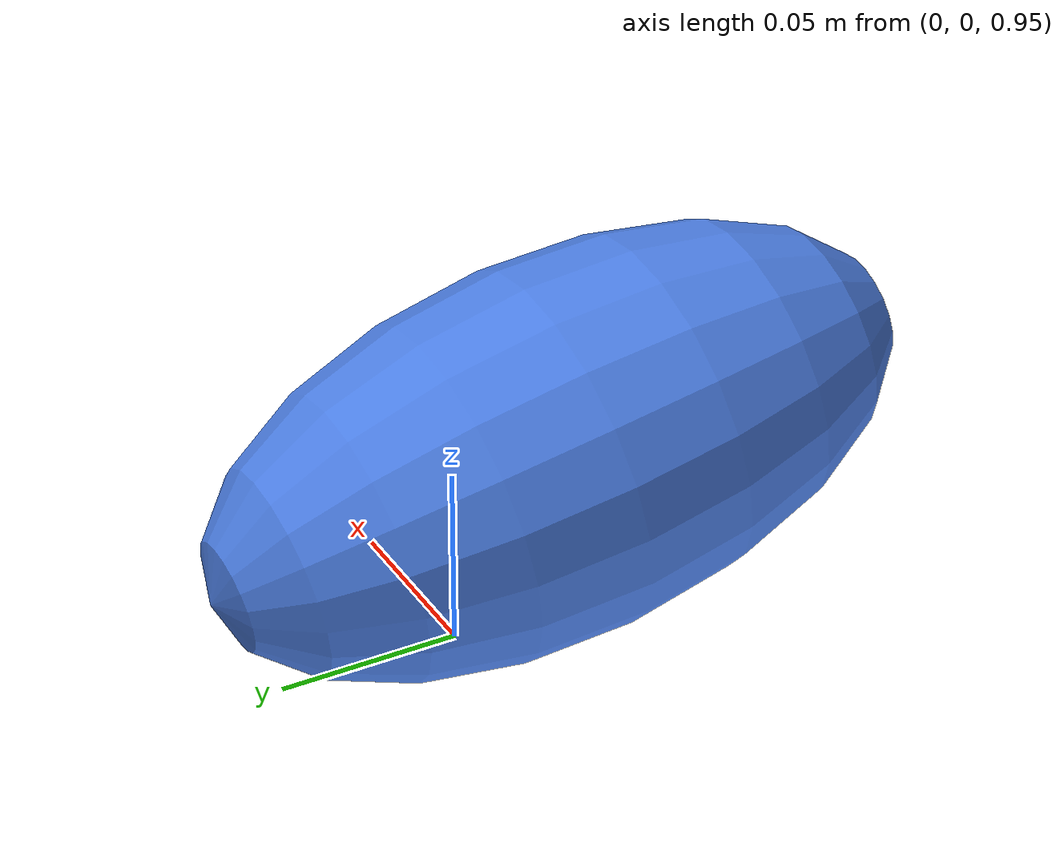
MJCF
<mujoco model="bounce">

<option gravity="0. 0. -2." timestep="0.01" solver="Newton" iterations="4" ls_iterations="10" tolerance="1e-8" cone="pyramidal"/>

<option>
<flag warmstart="enable" refsafe="disable" eulerdamp="disable"/>
</option>

<default>
<geom solimp="0.0 0.95 0.001 0.5 2" solref="0.005 1.0"/>
</default>

<visual>
  <map fogend="5" fogstart="3"/>
</visual>

<asset>
<texture type="skybox" builtin="gradient" rgb1="1.0 1.0 1.0" rgb2="1.0 1.0 1.0" width="32" height="512"/>
<texture name="grid" type="2d" builtin="checker" width="512" height="512" rgb1="0.9 0.9 0.9" rgb2="0.95 0.95 0.95"/>
<material name="grid" texture="grid" texrepeat="5 5" texuniform="true" reflectance=".0"/>
<texture name="ball" type="cube" builtin="flat" mark="cross" width="64" height="64" rgb1="0.3 0.5 0.9" rgb2="0.3 0.5 0.9" markrgb="1 1 1"/>
<material name="ball" texture="ball" texuniform="true" rgba="1 1 1 1."/>
</asset>

<worldbody>
    <light cutoff="100" diffuse="1 1 1" dir="-2. 0 -1.3" directional="true" exponent="1" pos="1 0 1.3" specular=".1 .1 .1"/>
    <geom name="floor" type="plane" contype="0" conaffinity="1" condim="3" material="grid" pos="0 0 0" size="20 20 0.125"/>
    <camera name="track" pos="0.597 0.050 0.085" xyaxes="-0.436 0.900 -0.000 0.101 0.049 0.994"/>

    <body pos="0 -0.03 1">
        <freejoint/>
        <geom name="ellipsoid" type="ellipsoid" size="0.05 0.05 0.1" density="200" euler="80 0 0" material="ball"/>
        <camera name="track2" mode="trackcom" pos="0 -0.5 0" zaxis="0 -1 0" />
    </body>

</worldbody>

</mujoco>
